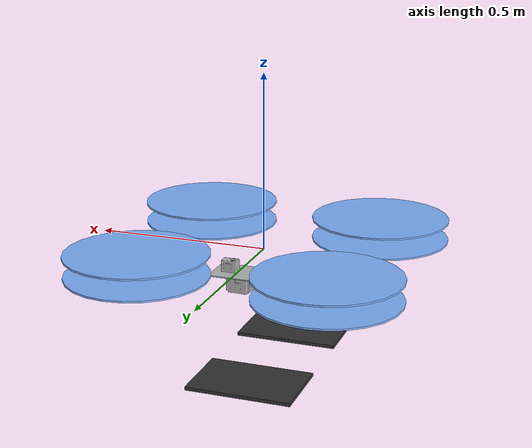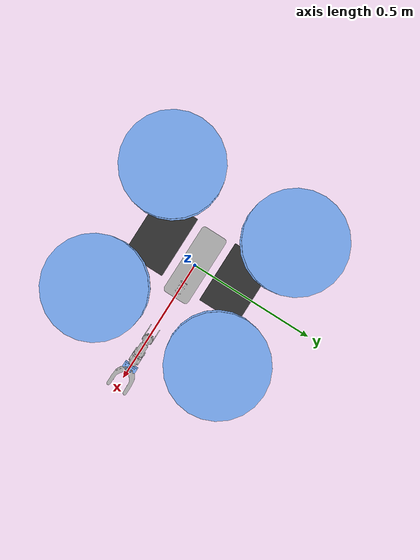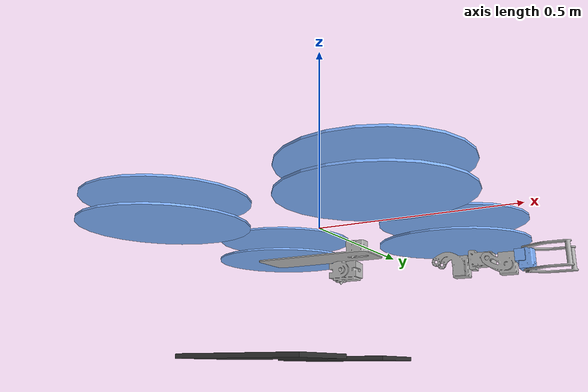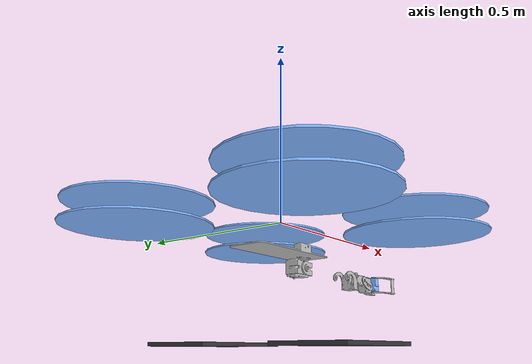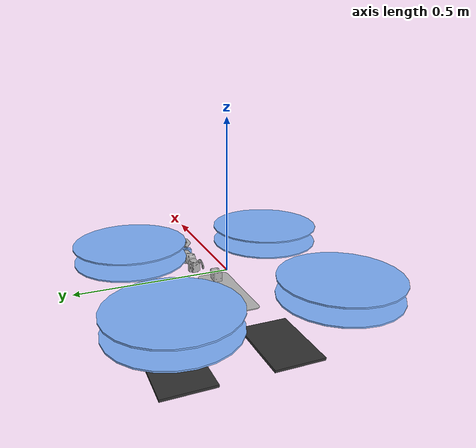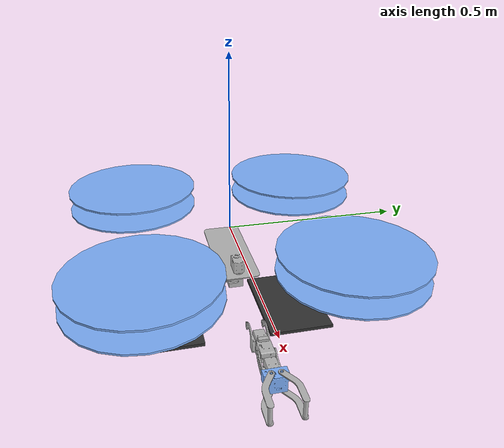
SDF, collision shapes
<sdf version='1.6'>
  <model name='hummingbird'>
    <link name='base_link'>
      <pose frame=''>0 0 0 0 -0 0</pose>
      <inertial>
        <pose frame=''>-0.00612 2.2e-05 -0.052639 0 -0 0</pose>
        <mass>2.24682</mass>
        <inertia>
          <ixx>0.0242961</ixx>
          <ixy>-3.09634e-06</ixy>
          <ixz>-4.73268e-06</ixz>
          <iyy>0.0224294</iyy>
          <iyz>1.91916e-06</iyz>
          <izz>0.0236308</izz>
        </inertia>
      </inertial>
      <collision name='base_link_inertia_collision_1'>
        <pose frame=''>-0.03 0.2 -0.316 0 -0 0</pose>
        <geometry>
          <box>
            <size>0.3 0.2 0.01</size>
          </box>
        </geometry>
        <surface>
          <contact>
            <ode>
              <min_depth>0.001</min_depth>
              <max_vel>0</max_vel>
            </ode>
          </contact>
          <friction>
            <ode/>
          </friction>
        </surface>
      </collision>
      <collision name='base_link_inertia_collision_2'>
        <pose frame=''>-0.03 -0.2 -0.316 0 -0 0</pose>
        <geometry>
          <box>
            <size>0.3 0.2 0.01</size>
          </box>
        </geometry>
        <surface>
          <contact>
            <ode>
              <min_depth>0.001</min_depth>
              <max_vel>0</max_vel>
            </ode>
          </contact>
          <friction>
            <ode/>
          </friction>
        </surface>
      </collision>
      <visual name='base_link_inertia_visual_1'>
        <pose frame=''>0 0 0 0 -0 0</pose>
        <geometry>
          <mesh>
            <scale>1 1 1</scale>
            <uri>meshes/base_link.dae</uri>
          </mesh>
        </geometry>
        <material>
          <ambient>1 0 0 1</ambient>
          <diffuse>0.2 0.2 0.2 1.0</diffuse>
          <specular>0.4 0.4 0.4 1</specular>
          <emissive>0 0 0 0</emissive>
        </material>
      </visual>
      <visual name='base_link_fixed_joint_lump__battery_link_visual_2'>
        <pose frame=''>-0.024927 0 -0.059795 0 -0 0</pose>
        <geometry>
          <mesh>
            <scale>1 1 1</scale>
            <uri>meshes/battery_link.dae</uri>
          </mesh>
        </geometry>
      </visual>
      <visual name='base_link_fixed_joint_lump__camera_link_visual_3'>
        <pose frame=''>0.1549 0 -0.1325 1.5708 -0 1.5708</pose>
        <geometry>
          <mesh>
            <scale>1 1 1</scale>
            <uri>meshes/d435.dae</uri>
          </mesh>
        </geometry>
        <material>
          <script>
            <uri>__default__</uri>
            <name>__default__</name>
          </script>
        </material>
      </visual>
      <visual name='base_link_fixed_joint_lump__link_supporter_1_visual_4'>
        <pose frame=''>-0.00858 0.1135 -0.21299 0 -0 0</pose>
        <geometry>
          <mesh>
            <scale>1 1 1</scale>
            <uri>meshes/link_supporter_1.dae</uri>
          </mesh>
        </geometry>
      </visual>
      <visual name='base_link_fixed_joint_lump__link_supporter_2_visual_5'>
        <pose frame=''>-0.00858 -0.1135 -0.21299 0 -0 0</pose>
        <geometry>
          <mesh>
            <scale>1 1 1</scale>
            <uri>meshes/link_supporter_2.dae</uri>
          </mesh>
        </geometry>
      </visual>
      <velocity_decay/>
      <velocity_decay/>
      <self_collide>0</self_collide>
      <enable_wind>0</enable_wind>
      <kinematic>0</kinematic>
      <gravity>1</gravity>
      <sensor name='realsensecolor' type='camera'>
        <camera name='realsense'>
          <horizontal_fov>1.21126</horizontal_fov>
          <image>
            <width>640</width>
            <height>480</height>
            <format>RGB_INT8</format>
          </image>
          <clip>
            <near>0.1</near>
            <far>100</far>
          </clip>
          <noise>
            <type>gaussian</type>
            <mean>0</mean>
            <stddev>0.007</stddev>
          </noise>
        </camera>
        <always_on>1</always_on>
        <update_rate>60</update_rate>
        <visualize>1</visualize>
        <pose frame=''>0.14 0.0175 -0.1325 0 -0 0</pose>
      </sensor>
      <sensor name='realsenseired1' type='camera'>
        <camera name='realsense'>
          <horizontal_fov>1.21126</horizontal_fov>
          <image>
            <width>640</width>
            <height>480</height>
            <format>L_INT8</format>
          </image>
          <clip>
            <near>0.1</near>
            <far>100</far>
          </clip>
          <noise>
            <type>gaussian</type>
            <mean>0</mean>
            <stddev>0.005</stddev>
          </noise>
        </camera>
        <always_on>1</always_on>
        <update_rate>90</update_rate>
        <visualize>0</visualize>
        <pose frame=''>0.14 0.0175 -0.1325 0 -0 0</pose>
      </sensor>
      <sensor name='realsenseired2' type='camera'>
        <camera name='realsense'>
          <horizontal_fov>1.21126</horizontal_fov>
          <image>
            <width>640</width>
            <height>480</height>
            <format>L_INT8</format>
          </image>
          <clip>
            <near>0.1</near>
            <far>100</far>
          </clip>
          <noise>
            <type>gaussian</type>
            <mean>0</mean>
            <stddev>0.005</stddev>
          </noise>
        </camera>
        <always_on>1</always_on>
        <update_rate>90</update_rate>
        <visualize>0</visualize>
        <pose frame=''>0.14 0.0175 -0.1325 0 -0 0</pose>
      </sensor>
      <sensor name='realsensedepth' type='depth'>
        <camera name='realsense'>
          <horizontal_fov>1.21126</horizontal_fov>
          <image>
            <width>640</width>
            <height>480</height>
          </image>
          <clip>
            <near>0.1</near>
            <far>100</far>
          </clip>
          <noise>
            <type>gaussian</type>
            <mean>0</mean>
            <stddev>0.001</stddev>
          </noise>
        </camera>
        <always_on>1</always_on>
        <update_rate>90</update_rate>
        <visualize>0</visualize>
        <pose frame=''>0.14 0.0175 -0.1325 0 -0 0</pose>
      </sensor>
      <gravity>1</gravity>
      <velocity_decay/>
      <self_collide>0</self_collide>
      <gravity>1</gravity>
      <sensor name='imu_sensor' type='imu'>
        <always_on>1</always_on>
        <update_rate>200</update_rate>
        <visualize>1</visualize>
        <plugin name='imu_plugin' filename='libgazebo_ros_imu_sensor.so'>
          <topicName>d435i/imu</topicName>
          <bodyName>camera_link</bodyName>
          <updateRateHZ>200.0</updateRateHZ>
          <gaussianNoise>0.0</gaussianNoise>
          <xyzOffset>0.0 0.0 0.0</xyzOffset>
          <rpyOffset>0.0 0.0 0.0</rpyOffset>
          <frameName>imu_link_</frameName>
        </plugin>
        <pose frame=''>0.14 0.0175 -0.1325 0 -0 0</pose>
      </sensor>
    </link>
    <link name='imu_link'>
      <pose frame=''>0 0 0 0 -0 0</pose>
      <inertial>
        <pose frame=''>0 0 0 0 -0 0</pose>
        <mass>0.015</mass>
        <inertia>
          <ixx>1e-05</ixx>
          <ixy>0</ixy>
          <ixz>0</ixz>
          <iyy>1e-05</iyy>
          <iyz>0</iyz>
          <izz>1e-05</izz>
        </inertia>
      </inertial>
    </link>
    <joint name='imu_joint' type='revolute'>
      <child>imu_link</child>
      <parent>base_link</parent>
      <axis>
        <xyz>1 0 0</xyz>
        <limit>
          <lower>-2.96</lower>
          <upper>2.96</upper>
          <effort>300</effort>
          <velocity>10</velocity>
        </limit>
        <dynamics>
          <damping>0.5</damping>
          <friction>0</friction>
          <spring_reference>0</spring_reference>
          <spring_stiffness>0</spring_stiffness>
        </dynamics>
        <use_parent_model_frame>1</use_parent_model_frame>
      </axis>
    </joint>
    <link name='02DOF_frame1'>
      <pose frame=''>0.090596 0 -0.116 0 -0 0</pose>
      <inertial>
        <pose frame=''>0.033728 -0.000275 0.0246 0 -0 0</pose>
        <mass>0.19851</mass>
        <inertia>
          <ixx>0.000141122</ixx>
          <ixy>7.22807e-07</ixy>
          <ixz>4.64909e-08</ixz>
          <iyy>0.000771231</iyy>
          <iyz>-4.80458e-11</iyz>
          <izz>0.000878136</izz>
        </inertia>
      </inertial>
      <collision name='02DOF_frame1_collision'>
        <pose frame=''>0 0 0 0 -0 0</pose>
        <geometry>
          <mesh>
            <scale>1 1 1</scale>
            <uri>meshes/01DOF_frame0.STL</uri>
          </mesh>
        </geometry>
      </collision>
      <visual name='02DOF_frame1_visual'>
        <pose frame=''>0 0 0 0 -0 0</pose>
        <geometry>
          <mesh>
            <scale>1 1 1</scale>
            <uri>meshes/01DOF_frame0.STL</uri>
          </mesh>
        </geometry>
      </visual>
    </link>
    <joint name='joint1' type='revolute'>
      <child>02DOF_frame1</child>
      <parent>base_link</parent>
      <axis>
        <xyz>0 0 1</xyz>
        <limit>
          <lower>-3.14</lower>
          <upper>3.14</upper>
          <effort>300</effort>
          <velocity>5</velocity>
        </limit>
        <dynamics>
          <damping>0.5</damping>
          <friction>0</friction>
          <spring_reference>0</spring_reference>
          <spring_stiffness>0</spring_stiffness>
        </dynamics>
        <use_parent_model_frame>1</use_parent_model_frame>
      </axis>
    </joint>
    <link name='03DOF_frame2'>
      <pose frame=''>0.075096 1.1e-05 -0.116 1.5708 -0 -0.000716</pose>
      <inertial>
        <pose frame=''>0.086767 -0.000312 -0.000208 0 -0 0</pose>
        <mass>0.2776</mass>
        <inertia>
          <ixx>0.000104653</ixx>
          <ixy>-2.49293e-07</ixy>
          <ixz>1.61884e-07</ixz>
          <iyy>0.00124372</iyy>
          <iyz>1.99829e-08</iyz>
          <izz>0.00128333</izz>
        </inertia>
      </inertial>
      <collision name='03DOF_frame2_collision'>
        <pose frame=''>0 0 0 0 -0 0</pose>
        <geometry>
          <mesh>
            <scale>1 1 1</scale>
            <uri>meshes/02DOF_frame1.STL</uri>
          </mesh>
        </geometry>
      </collision>
      <visual name='03DOF_frame2_visual'>
        <pose frame=''>0 0 0 0 -0 0</pose>
        <geometry>
          <mesh>
            <scale>1 1 1</scale>
            <uri>meshes/02DOF_frame1.STL</uri>
          </mesh>
        </geometry>
      </visual>
    </link>
    <joint name='joint2' type='revolute'>
      <child>03DOF_frame2</child>
      <parent>02DOF_frame1</parent>
      <axis>
        <xyz>-0.000716 -1 -4e-06</xyz>
        <limit>
          <lower>-3.14</lower>
          <upper>0</upper>
          <effort>300</effort>
          <velocity>5</velocity>
        </limit>
        <dynamics>
          <damping>0.5</damping>
          <friction>0</friction>
          <spring_reference>0</spring_reference>
          <spring_stiffness>0</spring_stiffness>
        </dynamics>
        <use_parent_model_frame>1</use_parent_model_frame>
      </axis>
    </joint>
    <link name='04DOF_frame3'>
      <pose frame=''>0.304926 -0.000153 -0.116 -2.35619 -1.57079 -2.35691</pose>
      <inertial>
        <pose frame=''>-0.011032 -0.028798 -0.000519 0 -0 0</pose>
        <mass>0.1104</mass>
        <inertia>
          <ixx>2.01217e-05</ixx>
          <ixy>-2.20278e-06</ixy>
          <ixz>-1.99671e-08</ixz>
          <iyy>2.64982e-05</iyy>
          <iyz>4.80728e-11</iyz>
          <izz>3.25383e-05</izz>
        </inertia>
      </inertial>
      <collision name='04DOF_frame3_collision'>
        <pose frame=''>0 0 0 0 -0 0</pose>
        <geometry>
          <mesh>
            <scale>1 1 1</scale>
            <uri>meshes/04DOF_frame3.STL</uri>
          </mesh>
        </geometry>
      </collision>
      <visual name='04DOF_frame3_visual'>
        <pose frame=''>0 0 0 0 -0 0</pose>
        <geometry>
          <mesh>
            <scale>1 1 1</scale>
            <uri>meshes/04DOF_frame3.STL</uri>
          </mesh>
        </geometry>
      </visual>
    </link>
    <joint name='joint3' type='revolute'>
      <child>04DOF_frame3</child>
      <parent>03DOF_frame2</parent>
      <axis>
        <xyz>-0.000716 -0 -4e-06</xyz>
        <limit>
          <lower>-2.6</lower>
          <upper>2.6</upper>
          <effort>300</effort>
          <velocity>5</velocity>
        </limit>
        <dynamics>
          <damping>0.5</damping>
          <friction>0</friction>
          <spring_reference>0</spring_reference>
          <spring_stiffness>0</spring_stiffness>
        </dynamics>
        <use_parent_model_frame>1</use_parent_model_frame>
      </axis>
    </joint>
    <link name='05DOF_frame4'>
      <pose frame=''>0.415606 -0.000233 -0.116 -0.785394 -1.57079 -2.35691</pose>
      <inertial>
        <pose frame=''>0.007516 0.000239 -0.060749 0 -0 0</pose>
        <mass>0.091183</mass>
        <inertia>
          <ixx>3.26656e-05</ixx>
          <ixy>-1.99671e-08</ixy>
          <ixz>-2.20279e-06</ixz>
          <iyy>4.48618e-05</iyy>
          <iyz>2.00314e-08</iyz>
          <izz>3.56317e-05</izz>
        </inertia>
      </inertial>
      <collision name='05DOF_frame4_collision'>
        <pose frame=''>0 0 0 0 -0 0</pose>
        <geometry>
          <mesh>
            <scale>1 1 1</scale>
            <uri>meshes/05DOF_frame4.STL</uri>
          </mesh>
        </geometry>
      </collision>
      <visual name='05DOF_frame4_visual'>
        <pose frame=''>0 0 0 0 -0 0</pose>
        <geometry>
          <mesh>
            <scale>1 1 1</scale>
            <uri>meshes/05DOF_frame4.STL</uri>
          </mesh>
        </geometry>
      </visual>
    </link>
    <joint name='joint4' type='revolute'>
      <child>05DOF_frame4</child>
      <parent>04DOF_frame3</parent>
      <axis>
        <xyz>1 -0.000713 4e-06</xyz>
        <limit>
          <lower>-3.14</lower>
          <upper>3.14</upper>
          <effort>300</effort>
          <velocity>5</velocity>
        </limit>
        <dynamics>
          <damping>0.5</damping>
          <friction>0</friction>
          <spring_reference>0</spring_reference>
          <spring_stiffness>0</spring_stiffness>
        </dynamics>
        <use_parent_model_frame>1</use_parent_model_frame>
      </axis>
    </joint>
    <link name='06DOF_frame5'>
      <pose frame=''>0.415606 -0.000233 -0.116 -2.35619 -1.57079 -2.35691</pose>
      <inertial>
        <pose frame=''>-0.006829 -0.015759 -0.001178 0 -0 0</pose>
        <mass>0.10197</mass>
        <inertia>
          <ixx>2.44078e-05</ixx>
          <ixy>-1.53373e-06</ixy>
          <ixz>-2.86115e-08</ixz>
          <iyy>1.92192e-05</iyy>
          <iyz>-1.20279e-07</iyz>
          <izz>2.94503e-05</izz>
        </inertia>
      </inertial>
      <collision name='06DOF_frame5_collision'>
        <pose frame=''>0 0 0 0 -0 0</pose>
        <geometry>
          <mesh>
            <scale>1 1 1</scale>
            <uri>meshes/06DOF_frame5.STL</uri>
          </mesh>
        </geometry>
      </collision>
      <visual name='06DOF_frame5_visual'>
        <pose frame=''>0 0 0 0 -0 0</pose>
        <geometry>
          <mesh>
            <scale>1 1 1</scale>
            <uri>meshes/06DOF_frame5.STL</uri>
          </mesh>
        </geometry>
      </visual>
    </link>
    <joint name='joint5' type='revolute'>
      <child>06DOF_frame5</child>
      <parent>05DOF_frame4</parent>
      <axis>
        <xyz>-0.000716 -1 -4e-06</xyz>
        <limit>
          <lower>-1.5</lower>
          <upper>1.8</upper>
          <effort>300</effort>
          <velocity>5</velocity>
        </limit>
        <dynamics>
          <damping>0.5</damping>
          <friction>0</friction>
          <spring_reference>0</spring_reference>
          <spring_stiffness>0</spring_stiffness>
        </dynamics>
        <use_parent_model_frame>1</use_parent_model_frame>
      </axis>
    </joint>
    <link name='07DOF_frame6'>
      <pose frame=''>0.520606 -0.000308 -0.115999 -0.785394 -1.57079 -2.35691</pose>
      <inertial>
        <pose frame=''>-0.0061 -0.000751 -0.065828 0 -0 0</pose>
        <mass>0.10793</mass>
        <inertia>
          <ixx>4.42907e-05</ixx>
          <ixy>-4.77866e-08</ixy>
          <ixz>1.52971e-06</ixz>
          <iyy>3.93504e-05</iyy>
          <iyz>1.20425e-07</iyz>
          <izz>4.00861e-05</izz>
        </inertia>
      </inertial>
      <collision name='07DOF_frame6_collision'>
        <pose frame=''>0 0 0 0 -0 0</pose>
        <geometry>
          <mesh>
            <scale>1 1 1</scale>
            <uri>meshes/07DOF_frame6.STL</uri>
          </mesh>
        </geometry>
      </collision>
      <visual name='07DOF_frame6_visual'>
        <pose frame=''>0 0 0 0 -0 0</pose>
        <geometry>
          <mesh>
            <scale>1 1 1</scale>
            <uri>meshes/07DOF_frame6.STL</uri>
          </mesh>
        </geometry>
      </visual>
      <visual name='07DOF_frame6_fixed_joint_lump__camera_visual_1'>
        <pose frame=''>0 0 0 0 -0 1.57</pose>
        <geometry>
          <mesh>
            <scale>1 1 1</scale>
            <uri>meshes/vi_camera.dae</uri>
          </mesh>
        </geometry>
        <material>
          <ambient>1 0 0 1</ambient>
          <diffuse>0.5 0.7 1.0 1.0</diffuse>
          <specular>0.5 0.5 0.5 1</specular>
          <emissive>0 0 0 0</emissive>
        </material>
      </visual>
      <gravity>1</gravity>
      <velocity_decay/>
      <self_collide>0</self_collide>
      <sensor name='camera1' type='camera'>
        <update_rate>60</update_rate>
        <camera name='head'>
          <horizontal_fov>1.39626</horizontal_fov>
          <pose frame=''>0 0 0 3.14 -1.57 -1.57</pose>
          <image>
            <width>640</width>
            <height>480</height>
            <format>R8G8B8</format>
          </image>
          <clip>
            <near>0.02</near>
            <far>300</far>
          </clip>
        </camera>
        <plugin name='camera_controller' filename='libgazebo_ros_camera.so'>
          <alwaysOn>true</alwaysOn>
          <updateRate>0.0</updateRate>
          <cameraName>/camera</cameraName>
          <imageTopicName>image_rect</imageTopicName>
          <cameraInfoTopicName>camera_info</cameraInfoTopicName>
          <frameName>camera</frameName>
          <hackBaseline>0.07</hackBaseline>
          <distortionK1>0.0</distortionK1>
          <distortionK2>0.0</distortionK2>
          <distortionK3>0.0</distortionK3>
          <distortionT1>0.0</distortionT1>
          <distortionT2>0.0</distortionT2>
        </plugin>
        <pose frame=''>0 0 0 0 -0 1.57</pose>
      </sensor>
    </link>
    <joint name='joint6' type='revolute'>
      <child>07DOF_frame6</child>
      <parent>06DOF_frame5</parent>
      <axis>
        <xyz>1 -0.000713 4e-06</xyz>
        <limit>
          <lower>-3.14</lower>
          <upper>3.14</upper>
          <effort>300</effort>
          <velocity>5</velocity>
        </limit>
        <dynamics>
          <damping>0.5</damping>
          <friction>0</friction>
          <spring_reference>0</spring_reference>
          <spring_stiffness>0</spring_stiffness>
        </dynamics>
        <use_parent_model_frame>1</use_parent_model_frame>
      </axis>
    </joint>
    <link name='finger1'>
      <pose frame=''>0.493864 0.011106 -0.115999 7e-06 7e-06 -1.57151</pose>
      <inertial>
        <pose frame=''>0.00951 -0.035505 -0.00612 0 -0 0</pose>
        <mass>0.0102125</mass>
        <inertia>
          <ixx>4.0484e-05</ixx>
          <ixy>5.41208e-07</ixy>
          <ixz>-4.76707e-08</ixz>
          <iyy>3.99381e-05</iyy>
          <iyz>1.53331e-06</iyz>
          <izz>4.5128e-05</izz>
        </inertia>
      </inertial>
      <collision name='finger1_collision'>
        <pose frame=''>0 0 0 0 -0 0</pose>
        <geometry>
          <mesh>
            <scale>1 1 1</scale>
            <uri>meshes/finger1_v2.STL</uri>
          </mesh>
        </geometry>
      </collision>
      <visual name='finger1_visual'>
        <pose frame=''>0 0 0 0 -0 0</pose>
        <geometry>
          <mesh>
            <scale>1 1 1</scale>
            <uri>meshes/finger1_v2.STL</uri>
          </mesh>
        </geometry>
      </visual>
    </link>
    <joint name='joint_finger_1' type='revolute'>
      <child>finger1</child>
      <parent>07DOF_frame6</parent>
      <axis>
        <xyz>-7e-06 -7e-06 1</xyz>
        <limit>
          <lower>-0.3</lower>
          <upper>1.2</upper>
          <effort>300</effort>
          <velocity>5</velocity>
        </limit>
        <dynamics>
          <damping>0.5</damping>
          <friction>0</friction>
          <spring_reference>0</spring_reference>
          <spring_stiffness>0</spring_stiffness>
        </dynamics>
        <use_parent_model_frame>1</use_parent_model_frame>
      </axis>
    </joint>
    <link name='finger2'>
      <pose frame=''>0.493847 -0.012289 -0.115999 -3.14159 7e-06 -1.57151</pose>
      <inertial>
        <pose frame=''>-0.011515 0.035505 0.00612 0 -0 0</pose>
        <mass>0.010212</mass>
        <inertia>
          <ixx>4.0484e-05</ixx>
          <ixy>2.99368e-07</ixy>
          <ixz>4.76707e-08</ixz>
          <iyy>3.99381e-05</iyy>
          <iyz>1.53413e-06</iyz>
          <izz>4.5128e-05</izz>
        </inertia>
      </inertial>
      <collision name='finger2_collision'>
        <pose frame=''>0 0 0 0 -0 0</pose>
        <geometry>
          <mesh>
            <scale>1 1 1</scale>
            <uri>meshes/finger2_v2.STL</uri>
          </mesh>
        </geometry>
      </collision>
      <visual name='finger2_visual'>
        <pose frame=''>0 0 0 0 -0 0</pose>
        <geometry>
          <mesh>
            <scale>1 1 1</scale>
            <uri>meshes/finger2_v2.STL</uri>
          </mesh>
        </geometry>
      </visual>
    </link>
    <joint name='joint_finger_2' type='revolute'>
      <child>finger2</child>
      <parent>07DOF_frame6</parent>
      <axis>
        <xyz>0 7e-06 -1</xyz>
        <limit>
          <lower>-0.3</lower>
          <upper>1.2</upper>
          <effort>300</effort>
          <velocity>5</velocity>
        </limit>
        <dynamics>
          <damping>0.5</damping>
          <friction>0</friction>
          <spring_reference>0</spring_reference>
          <spring_stiffness>0</spring_stiffness>
        </dynamics>
        <use_parent_model_frame>1</use_parent_model_frame>
      </axis>
    </joint>
    <link name='rotor_0'>
      <pose frame=''>0.26701 -0.26701 0.04 0 -0 0</pose>
      <inertial>
        <pose frame=''>0 0 0 0 -0 0</pose>
        <mass>0.009</mass>
        <inertia>
          <ixx>1.755e-06</ixx>
          <ixy>0</ixy>
          <ixz>0</ixz>
          <iyy>0.00120007</iyy>
          <iyz>0</iyz>
          <izz>0.00120169</izz>
        </inertia>
      </inertial>
      <collision name='rotor_0_collision'>
        <pose frame=''>0 0 0 0 -0 0</pose>
        <geometry>
          <cylinder>
            <length>0.005</length>
            <radius>0.2</radius>
          </cylinder>
        </geometry>
        <surface>
          <contact>
            <ode/>
          </contact>
          <friction>
            <ode/>
          </friction>
        </surface>
      </collision>
      <visual name='rotor_0_visual'>
        <pose frame=''>0 0 0 0 -0 0</pose>
        <geometry>
          <mesh>
            <scale>0.2 0.2 0.2</scale>
            <uri>meshes/propeller_ccw.dae</uri>
          </mesh>
        </geometry>
        <material>
          <ambient>1 0 0 1</ambient>
          <diffuse>0.5 0.7 1.0 1.0</diffuse>
          <specular>0.5 0.5 0.5 1</specular>
          <emissive>0 0 0 0</emissive>
        </material>
      </visual>
      <gravity>1</gravity>
      <velocity_decay/>
      <self_collide>0</self_collide>
    </link>
    <joint name='rotor_0_joint' type='revolute'>
      <child>rotor_0</child>
      <parent>base_link</parent>
      <axis>
        <xyz>0 0 1</xyz>
        <limit>
          <lower>-1e+16</lower>
          <upper>1e+16</upper>
        </limit>
        <dynamics>
          <damping>0.5</damping>
          <friction>0</friction>
          <spring_reference>0</spring_reference>
          <spring_stiffness>0</spring_stiffness>
        </dynamics>
        <use_parent_model_frame>1</use_parent_model_frame>
      </axis>
    </joint>
    <link name='rotor_1'>
      <pose frame=''>-0.26701 0.26701 0.04 0 -0 0</pose>
      <inertial>
        <pose frame=''>0 0 0 0 -0 0</pose>
        <mass>0.009</mass>
        <inertia>
          <ixx>1.755e-06</ixx>
          <ixy>0</ixy>
          <ixz>0</ixz>
          <iyy>0.00120007</iyy>
          <iyz>0</iyz>
          <izz>0.00120169</izz>
        </inertia>
      </inertial>
      <collision name='rotor_1_collision'>
        <pose frame=''>0 0 0 0 -0 0</pose>
        <geometry>
          <cylinder>
            <length>0.005</length>
            <radius>0.2</radius>
          </cylinder>
        </geometry>
        <surface>
          <contact>
            <ode/>
          </contact>
          <friction>
            <ode/>
          </friction>
        </surface>
      </collision>
      <visual name='rotor_1_visual'>
        <pose frame=''>0 0 0 0 -0 0</pose>
        <geometry>
          <mesh>
            <scale>0.2 0.2 0.2</scale>
            <uri>meshes/propeller_ccw.dae</uri>
          </mesh>
        </geometry>
        <material>
          <ambient>1 0 0 1</ambient>
          <diffuse>0.5 0.7 1.0 1.0</diffuse>
          <specular>0.5 0.5 0.5 1</specular>
          <emissive>0 0 0 0</emissive>
        </material>
      </visual>
      <gravity>1</gravity>
      <velocity_decay/>
      <self_collide>0</self_collide>
    </link>
    <joint name='rotor_1_joint' type='revolute'>
      <child>rotor_1</child>
      <parent>base_link</parent>
      <axis>
        <xyz>0 0 1</xyz>
        <limit>
          <lower>-1e+16</lower>
          <upper>1e+16</upper>
        </limit>
        <dynamics>
          <damping>0.5</damping>
          <friction>0</friction>
          <spring_reference>0</spring_reference>
          <spring_stiffness>0</spring_stiffness>
        </dynamics>
        <use_parent_model_frame>1</use_parent_model_frame>
      </axis>
    </joint>
    <link name='rotor_2'>
      <pose frame=''>0.26701 0.26701 0.04 0 -0 0</pose>
      <inertial>
        <pose frame=''>0 0 0 0 -0 0</pose>
        <mass>0.009</mass>
        <inertia>
          <ixx>1.755e-06</ixx>
          <ixy>0</ixy>
          <ixz>0</ixz>
          <iyy>0.00120007</iyy>
          <iyz>0</iyz>
          <izz>0.00120169</izz>
        </inertia>
      </inertial>
      <collision name='rotor_2_collision'>
        <pose frame=''>0 0 0 0 -0 0</pose>
        <geometry>
          <cylinder>
            <length>0.005</length>
            <radius>0.2</radius>
          </cylinder>
        </geometry>
        <surface>
          <contact>
            <ode/>
          </contact>
          <friction>
            <ode/>
          </friction>
        </surface>
      </collision>
      <visual name='rotor_2_visual'>
        <pose frame=''>0 0 0 0 -0 0</pose>
        <geometry>
          <mesh>
            <scale>0.2 0.2 0.2</scale>
            <uri>meshes/propeller_cw.dae</uri>
          </mesh>
        </geometry>
        <material>
          <ambient>1 0 0 1</ambient>
          <diffuse>0.5 0.7 1.0 1.0</diffuse>
          <specular>0.5 0.5 0.5 1</specular>
          <emissive>0 0 0 0</emissive>
        </material>
      </visual>
      <gravity>1</gravity>
      <velocity_decay/>
      <self_collide>0</self_collide>
    </link>
    <joint name='rotor_2_joint' type='revolute'>
      <child>rotor_2</child>
      <parent>base_link</parent>
      <axis>
        <xyz>0 0 1</xyz>
        <limit>
          <lower>-1e+16</lower>
          <upper>1e+16</upper>
        </limit>
        <dynamics>
          <damping>0.5</damping>
          <friction>0</friction>
          <spring_reference>0</spring_reference>
          <spring_stiffness>0</spring_stiffness>
        </dynamics>
        <use_parent_model_frame>1</use_parent_model_frame>
      </axis>
    </joint>
    <link name='rotor_3'>
      <pose frame=''>-0.26701 -0.26701 0.04 0 -0 0</pose>
      <inertial>
        <pose frame=''>0 0 0 0 -0 0</pose>
        <mass>0.009</mass>
        <inertia>
          <ixx>1.755e-06</ixx>
          <ixy>0</ixy>
          <ixz>0</ixz>
          <iyy>0.00120007</iyy>
          <iyz>0</iyz>
          <izz>0.00120169</izz>
        </inertia>
      </inertial>
      <collision name='rotor_3_collision'>
        <pose frame=''>0 0 0 0 -0 0</pose>
        <geometry>
          <cylinder>
            <length>0.005</length>
            <radius>0.2</radius>
          </cylinder>
        </geometry>
        <surface>
          <contact>
            <ode/>
          </contact>
          <friction>
            <ode/>
          </friction>
        </surface>
      </collision>
      <visual name='rotor_3_visual'>
        <pose frame=''>0 0 0 0 -0 0</pose>
        <geometry>
          <mesh>
            <scale>0.2 0.2 0.2</scale>
            <uri>meshes/propeller_cw.dae</uri>
          </mesh>
        </geometry>
        <material>
          <ambient>1 0 0 1</ambient>
          <diffuse>0.5 0.7 1.0 1.0</diffuse>
          <specular>0.5 0.5 0.5 1</specular>
          <emissive>0 0 0 0</emissive>
        </material>
      </visual>
      <gravity>1</gravity>
      <velocity_decay/>
      <self_collide>0</self_collide>
    </link>
    <joint name='rotor_3_joint' type='revolute'>
      <child>rotor_3</child>
      <parent>base_link</parent>
      <axis>
        <xyz>0 0 1</xyz>
        <limit>
          <lower>-1e+16</lower>
          <upper>1e+16</upper>
        </limit>
        <dynamics>
          <damping>0.5</damping>
          <friction>0</friction>
          <spring_reference>0</spring_reference>
          <spring_stiffness>0</spring_stiffness>
        </dynamics>
        <use_parent_model_frame>1</use_parent_model_frame>
      </axis>
    </joint>
    <link name='rotor_4'>
      <pose frame=''>0.26701 -0.26701 -0.02 0 -0 0</pose>
      <inertial>
        <pose frame=''>0 0 0 0 -0 0</pose>
        <mass>0.009</mass>
        <inertia>
          <ixx>1.755e-06</ixx>
          <ixy>0</ixy>
          <ixz>0</ixz>
          <iyy>0.00120007</iyy>
          <iyz>0</iyz>
          <izz>0.00120169</izz>
        </inertia>
      </inertial>
      <collision name='rotor_4_collision'>
        <pose frame=''>0 0 0 0 -0 0</pose>
        <geometry>
          <cylinder>
            <length>0.005</length>
            <radius>0.2</radius>
          </cylinder>
        </geometry>
        <surface>
          <contact>
            <ode/>
          </contact>
          <friction>
            <ode/>
          </friction>
        </surface>
      </collision>
      <visual name='rotor_4_visual'>
        <pose frame=''>0 0 0 0 -0 0</pose>
        <geometry>
          <mesh>
            <scale>0.2 0.2 0.2</scale>
            <uri>meshes/propeller_ccw.dae</uri>
          </mesh>
        </geometry>
        <material>
          <ambient>1 0 0 1</ambient>
          <diffuse>0.5 0.7 1.0 1.0</diffuse>
          <specular>0.5 0.5 0.5 1</specular>
          <emissive>0 0 0 0</emissive>
        </material>
      </visual>
      <gravity>1</gravity>
      <velocity_decay/>
      <self_collide>0</self_collide>
    </link>
    <joint name='rotor_4_joint' type='revolute'>
      <child>rotor_4</child>
      <parent>base_link</parent>
      <axis>
        <xyz>0 0 1</xyz>
        <limit>
          <lower>-1e+16</lower>
          <upper>1e+16</upper>
        </limit>
        <dynamics>
          <damping>0.5</damping>
          <friction>0</friction>
          <spring_reference>0</spring_reference>
          <spring_stiffness>0</spring_stiffness>
        </dynamics>
        <use_parent_model_frame>1</use_parent_model_frame>
      </axis>
    </joint>
    <link name='rotor_5'>
      <pose frame=''>-0.26701 0.26701 -0.02 0 -0 0</pose>
      <inertial>
        <pose frame=''>0 0 0 0 -0 0</pose>
        <mass>0.009</mass>
        <inertia>
          <ixx>1.755e-06</ixx>
          <ixy>0</ixy>
          <ixz>0</ixz>
          <iyy>0.00120007</iyy>
          <iyz>0</iyz>
          <izz>0.00120169</izz>
        </inertia>
      </inertial>
      <collision name='rotor_5_collision'>
        <pose frame=''>0 0 0 0 -0 0</pose>
        <geometry>
          <cylinder>
            <length>0.005</length>
            <radius>0.2</radius>
          </cylinder>
        </geometry>
        <surface>
          <contact>
            <ode/>
          </contact>
          <friction>
            <ode/>
          </friction>
        </surface>
      </collision>
      <visual name='rotor_5_visual'>
        <pose frame=''>0 0 0 0 -0 0</pose>
        <geometry>
          <mesh>
            <scale>0.2 0.2 0.2</scale>
            <uri>meshes/propeller_ccw.dae</uri>
          </mesh>
        </geometry>
        <material>
          <ambient>1 0 0 1</ambient>
          <diffuse>0.5 0.7 1.0 1.0</diffuse>
          <specular>0.5 0.5 0.5 1</specular>
          <emissive>0 0 0 0</emissive>
        </material>
      </visual>
      <gravity>1</gravity>
      <velocity_decay/>
      <self_collide>0</self_collide>
    </link>
    <joint name='rotor_5_joint' type='revolute'>
      <child>rotor_5</child>
      <parent>base_link</parent>
      <axis>
        <xyz>0 0 1</xyz>
        <limit>
          <lower>-1e+16</lower>
          <upper>1e+16</upper>
        </limit>
        <dynamics>
          <damping>0.5</damping>
          <friction>0</friction>
          <spring_reference>0</spring_reference>
          <spring_stiffness>0</spring_stiffness>
        </dynamics>
        <use_parent_model_frame>1</use_parent_model_frame>
      </axis>
    </joint>
    <link name='rotor_6'>
      <pose frame=''>0.26701 0.26701 -0.02 0 -0 0</pose>
      <inertial>
        <pose frame=''>0 0 0 0 -0 0</pose>
        <mass>0.009</mass>
        <inertia>
          <ixx>1.755e-06</ixx>
          <ixy>0</ixy>
          <ixz>0</ixz>
          <iyy>0.00120007</iyy>
          <iyz>0</iyz>
          <izz>0.00120169</izz>
        </inertia>
      </inertial>
      <collision name='rotor_6_collision'>
        <pose frame=''>0 0 0 0 -0 0</pose>
        <geometry>
          <cylinder>
            <length>0.005</length>
            <radius>0.2</radius>
          </cylinder>
        </geometry>
        <surface>
          <contact>
            <ode/>
          </contact>
          <friction>
            <ode/>
          </friction>
        </surface>
      </collision>
      <visual name='rotor_6_visual'>
        <pose frame=''>0 0 0 0 -0 0</pose>
        <geometry>
          <mesh>
            <scale>0.2 0.2 0.2</scale>
            <uri>meshes/propeller_cw.dae</uri>
          </mesh>
        </geometry>
        <material>
          <ambient>1 0 0 1</ambient>
          <diffuse>0.5 0.7 1.0 1.0</diffuse>
          <specular>0.5 0.5 0.5 1</specular>
          <emissive>0 0 0 0</emissive>
        </material>
      </visual>
      <gravity>1</gravity>
      <velocity_decay/>
      <self_collide>0</self_collide>
    </link>
    <joint name='rotor_6_joint' type='revolute'>
      <child>rotor_6</child>
      <parent>base_link</parent>
      <axis>
        <xyz>0 0 1</xyz>
        <limit>
          <lower>-1e+16</lower>
          <upper>1e+16</upper>
        </limit>
        <dynamics>
          <damping>0.5</damping>
          <friction>0</friction>
          <spring_reference>0</spring_reference>
          <spring_stiffness>0</spring_stiffness>
        </dynamics>
        <use_parent_model_frame>1</use_parent_model_frame>
      </axis>
    </joint>
    <link name='rotor_7'>
      <pose frame=''>-0.26701 -0.26701 -0.02 0 -0 0</pose>
      <inertial>
        <pose frame=''>0 0 0 0 -0 0</pose>
        <mass>0.009</mass>
        <inertia>
          <ixx>1.755e-06</ixx>
          <ixy>0</ixy>
          <ixz>0</ixz>
          <iyy>0.00120007</iyy>
          <iyz>0</iyz>
          <izz>0.00120169</izz>
        </inertia>
      </inertial>
      <collision name='rotor_7_collision'>
        <pose frame=''>0 0 0 0 -0 0</pose>
        <geometry>
          <cylinder>
            <length>0.005</length>
            <radius>0.2</radius>
          </cylinder>
        </geometry>
        <surface>
          <contact>
            <ode/>
          </contact>
          <friction>
            <ode/>
          </friction>
        </surface>
      </collision>
      <visual name='rotor_7_visual'>
        <pose frame=''>0 0 0 0 -0 0</pose>
        <geometry>
          <mesh>
            <scale>0.2 0.2 0.2</scale>
            <uri>meshes/propeller_cw.dae</uri>
          </mesh>
        </geometry>
        <material>
          <ambient>1 0 0 1</ambient>
          <diffuse>0.5 0.7 1.0 1.0</diffuse>
          <specular>0.5 0.5 0.5 1</specular>
          <emissive>0 0 0 0</emissive>
        </material>
      </visual>
      <gravity>1</gravity>
      <velocity_decay/>
      <self_collide>0</self_collide>
    </link>
    <joint name='rotor_7_joint' type='revolute'>
      <child>rotor_7</child>
      <parent>base_link</parent>
      <axis>
        <xyz>0 0 1</xyz>
        <limit>
          <lower>-1e+16</lower>
          <upper>1e+16</upper>
        </limit>
        <dynamics>
          <damping>0.5</damping>
          <friction>0</friction>
          <spring_reference>0</spring_reference>
          <spring_stiffness>0</spring_stiffness>
        </dynamics>
        <use_parent_model_frame>1</use_parent_model_frame>
      </axis>
    </joint>
    <plugin name='realsense' filename='librealsense_gazebo_plugin.so'>
      <prefix>realsense</prefix>
      <depthUpdateRate>60.0</depthUpdateRate>
      <colorUpdateRate>60.0</colorUpdateRate>
      <infraredUpdateRate>60.0</infraredUpdateRate>
      <depthTopicName>depth/image_raw</depthTopicName>
      <depthCameraInfoTopicName>depth/camera_info</depthCameraInfoTopicName>
      <colorTopicName>color/image_raw</colorTopicName>
      <colorCameraInfoTopicName>color/camera_info</colorCameraInfoTopicName>
      <infrared1TopicName>infra1/image_raw</infrared1TopicName>
      <infrared1CameraInfoTopicName>infra1/camera_info</infrared1CameraInfoTopicName>
      <infrared2TopicName>infra2/image_raw</infrared2TopicName>
      <infrared2CameraInfoTopicName>infra2/camera_info</infrared2CameraInfoTopicName>
      <colorOpticalframeName>camera_color_optical_frame</colorOpticalframeName>
      <depthOpticalframeName>camera_depth_optical_frame</depthOpticalframeName>
      <infrared1OpticalframeName>camera_left_ir_optical_frame</infrared1OpticalframeName>
      <infrared2OpticalframeName>camera_right_ir_optical_frame</infrared2OpticalframeName>
      <rangeMinDepth>0.2</rangeMinDepth>
      <rangeMaxDepth>10.0</rangeMaxDepth>
      <pointCloud>true</pointCloud>
      <pointCloudTopicName>depth/points</pointCloudTopicName>
      <pointCloudCutoff>0.5</pointCloudCutoff>
      <pointCloudCutoffMax>9.0</pointCloudCutoffMax>
    </plugin>
  </model>
</sdf>
